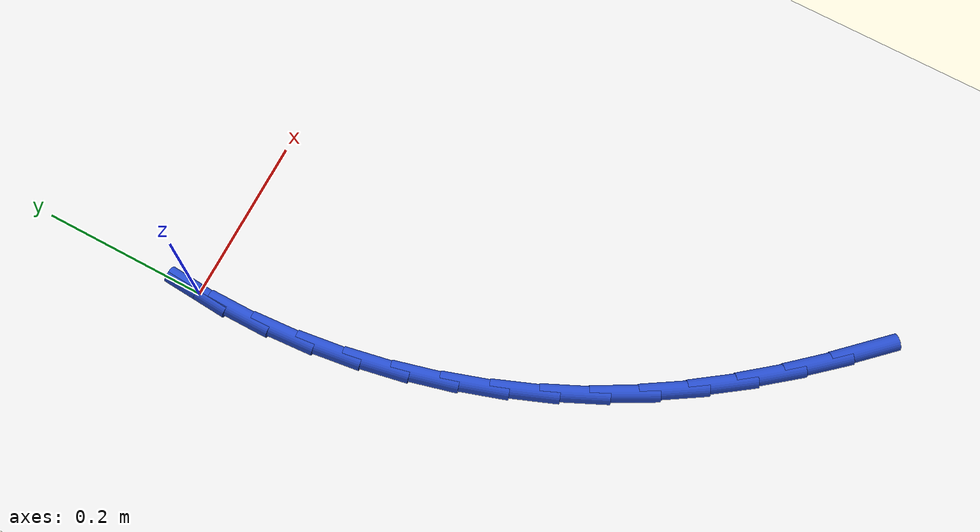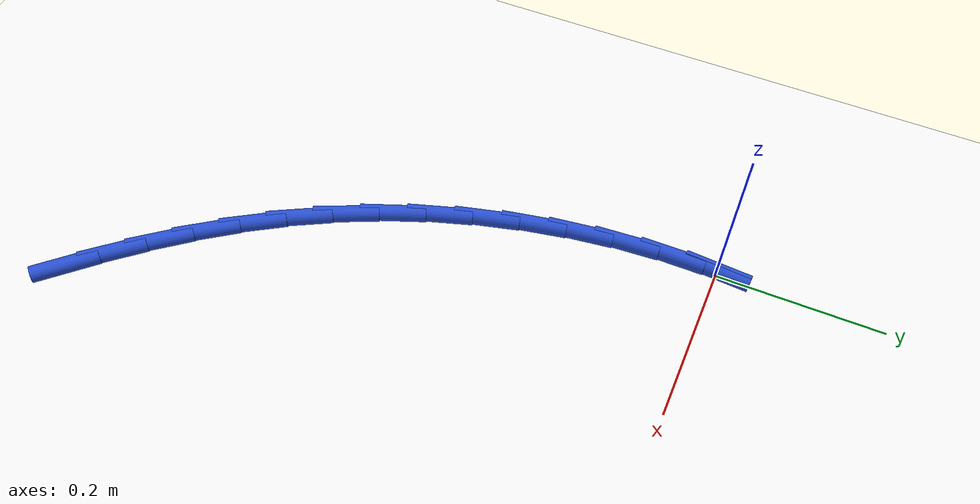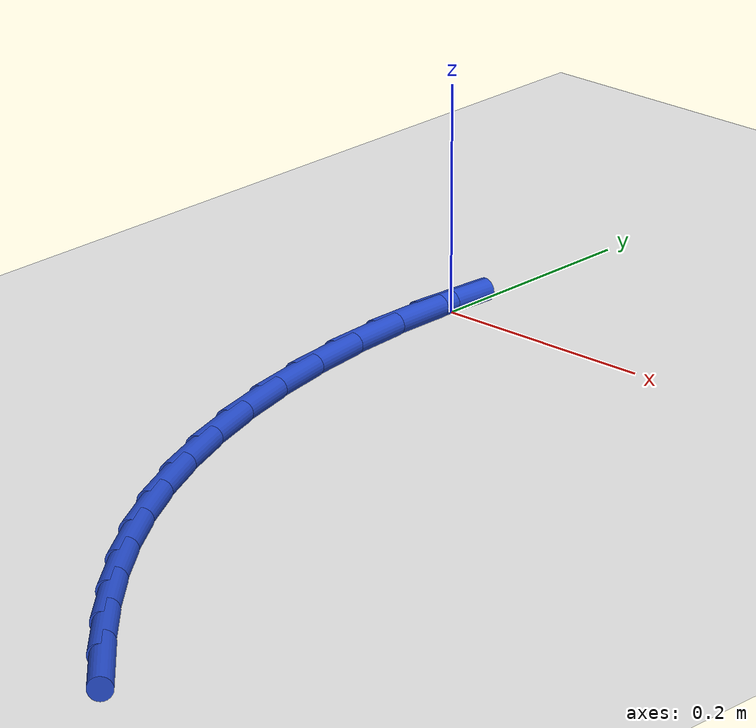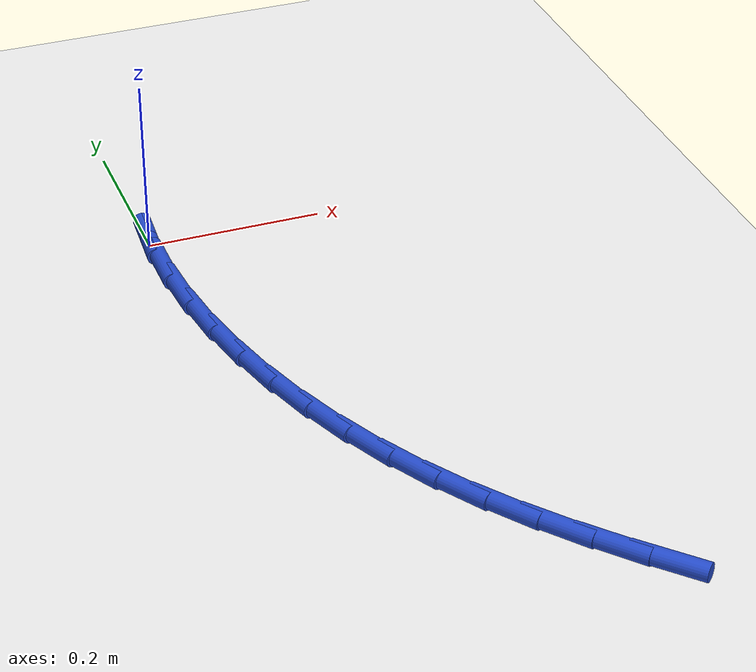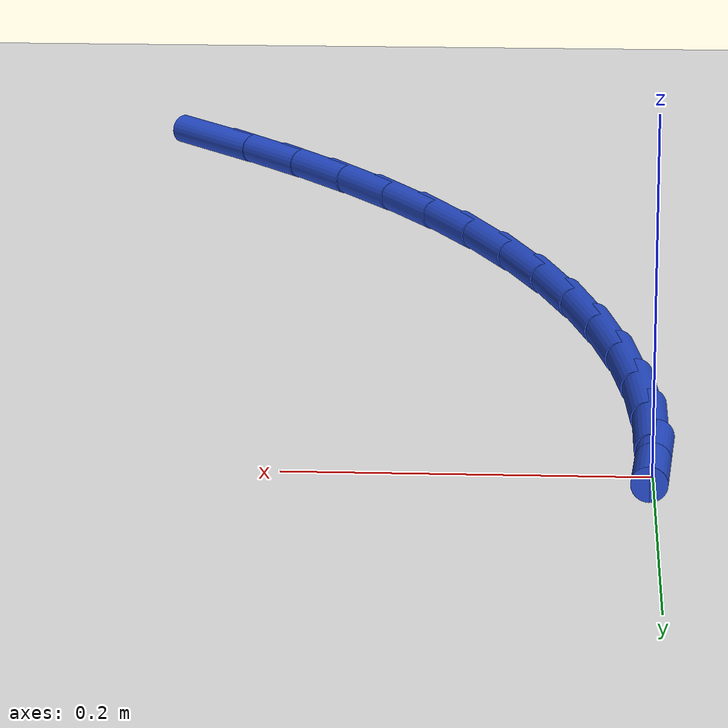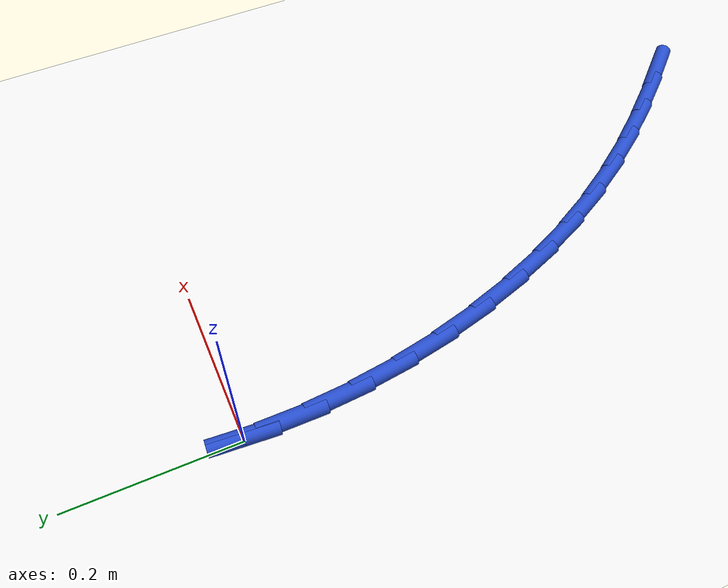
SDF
<sdf version="1.6">
 <world name="default">
  <model name="ground_plane">
   <static>1</static>
   <link name="link">
    <collision name="collision">
     <geometry><plane><normal>0 0 1</normal><size>100 100</size></plane></geometry>
     <surface><friction><ode><mu>100</mu><mu2>50</mu2></ode></friction></surface>
    </collision>
    <visual name="visual">
     <cast_shadows>0</cast_shadows>
     <geometry><plane><normal>0 0 1</normal><size>100 100</size></plane></geometry>
     <material>
      <script><uri>file://media/materials/scripts/gazebo.material</uri><name>Gazebo/WhiteGlow</name></script>
     </material>
    </visual>
   </link>
  </model>
  <model name="line">
   <link name="link_0">
    <pose>-6.938893903907228e-17 6.938893903907228e-17 0.01 0 1.57 1.5018297165987593</pose>
    <collision name="collision">
     <geometry><cylinder><radius>0.01</radius><length>0.08</length></cylinder></geometry>
    </collision>
    <visual name="visual">
     <material>
      <script><name>Gazebo/Blue</name><uri>file://media/materials/scripts/gazebo.material</uri></script>
     </material>
     <geometry><cylinder><radius>0.01</radius><length>0.08</length></cylinder></geometry>
    </visual>
   </link>
   <link name="link_116">
    <pose>0.2978904582629054 -0.7003818409103721 0.01 0 1.57 -0.804767572919298</pose>
    <collision name="collision">
     <geometry><cylinder><radius>0.01</radius><length>0.08</length></cylinder></geometry>
    </collision>
    <visual name="visual">
     <material>
      <script><name>Gazebo/Blue</name><uri>file://media/materials/scripts/gazebo.material</uri></script>
     </material>
     <geometry><cylinder><radius>0.01</radius><length>0.08</length></cylinder></geometry>
    </visual>
   </link>
   <link name="link_117">
    <pose>0.2592275522506686 -0.660191401115927 0.01 0 1.57 -0.8456819976106417</pose>
    <collision name="collision">
     <geometry><cylinder><radius>0.01</radius><length>0.08</length></cylinder></geometry>
    </collision>
    <visual name="visual">
     <material>
      <script><name>Gazebo/Blue</name><uri>file://media/materials/scripts/gazebo.material</uri></script>
     </material>
     <geometry><cylinder><radius>0.01</radius><length>0.08</length></cylinder></geometry>
    </visual>
   </link>
   <link name="link_118">
    <pose>0.22235094642159942 -0.6185773364656042 0.01 0 1.57 -0.8928276456268046</pose>
    <collision name="collision">
     <geometry><cylinder><radius>0.01</radius><length>0.08</length></cylinder></geometry>
    </collision>
    <visual name="visual">
     <material>
      <script><name>Gazebo/Blue</name><uri>file://media/materials/scripts/gazebo.material</uri></script>
     </material>
     <geometry><cylinder><radius>0.01</radius><length>0.08</length></cylinder></geometry>
    </visual>
   </link>
   <link name="link_119">
    <pose>0.18753707469067815 -0.5753467890394134 0.01 0 1.57 -0.9461012022395117</pose>
    <collision name="collision">
     <geometry><cylinder><radius>0.01</radius><length>0.08</length></cylinder></geometry>
    </collision>
    <visual name="visual">
     <material>
      <script><name>Gazebo/Blue</name><uri>file://media/materials/scripts/gazebo.material</uri></script>
     </material>
     <geometry><cylinder><radius>0.01</radius><length>0.08</length></cylinder></geometry>
    </visual>
   </link>
   <link name="link_120">
    <pose>0.15506237097288306 -0.5303069009173617 0.01 0 1.57 -1.0052295514214722</pose>
    <collision name="collision">
     <geometry><cylinder><radius>0.01</radius><length>0.08</length></cylinder></geometry>
    </collision>
    <visual name="visual">
     <material>
      <script><name>Gazebo/Blue</name><uri>file://media/materials/scripts/gazebo.material</uri></script>
     </material>
     <geometry><cylinder><radius>0.01</radius><length>0.08</length></cylinder></geometry>
    </visual>
   </link>
   <link name="link_121">
    <pose>0.12520326918319322 -0.48326481417945816 0.01 0 1.57 -1.06941275107051</pose>
    <collision name="collision">
     <geometry><cylinder><radius>0.01</radius><length>0.08</length></cylinder></geometry>
    </collision>
    <visual name="visual">
     <material>
      <script><name>Gazebo/Blue</name><uri>file://media/materials/scripts/gazebo.material</uri></script>
     </material>
     <geometry><cylinder><radius>0.01</radius><length>0.08</length></cylinder></geometry>
    </visual>
   </link>
   <link name="link_122">
    <pose>0.09822890904358264 -0.4340505412879327 0.01 0 1.57 -1.1339860611031782</pose>
    <collision name="collision">
     <geometry><cylinder><radius>0.01</radius><length>0.08</length></cylinder></geometry>
    </collision>
    <visual name="visual">
     <material>
      <script><name>Gazebo/Blue</name><uri>file://media/materials/scripts/gazebo.material</uri></script>
     </material>
     <geometry><cylinder><radius>0.01</radius><length>0.08</length></cylinder></geometry>
    </visual>
   </link>
   <link name="link_123">
    <pose>0.07430668353510661 -0.38281311380048655 0.01 0 1.57 -1.1963943296403172</pose>
    <collision name="collision">
     <geometry><cylinder><radius>0.01</radius><length>0.08</length></cylinder></geometry>
    </collision>
    <visual name="visual">
     <material>
      <script><name>Gazebo/Blue</name><uri>file://media/materials/scripts/gazebo.material</uri></script>
     </material>
     <geometry><cylinder><radius>0.01</radius><length>0.08</length></cylinder></geometry>
    </visual>
   </link>
   <link name="link_124">
    <pose>0.053529279097839236 -0.32993579989915944 0.01 0 1.57 -1.2574026510803076</pose>
    <collision name="collision">
     <geometry><cylinder><radius>0.01</radius><length>0.08</length></cylinder></geometry>
    </collision>
    <visual name="visual">
     <material>
      <script><name>Gazebo/Blue</name><uri>file://media/materials/scripts/gazebo.material</uri></script>
     </material>
     <geometry><cylinder><radius>0.01</radius><length>0.08</length></cylinder></geometry>
    </visual>
   </link>
   <link name="link_125">
    <pose>0.03598765832160857 -0.2758072727660992 0.01 0 1.57 -1.3178391936511522</pose>
    <collision name="collision">
     <geometry><cylinder><radius>0.01</radius><length>0.08</length></cylinder></geometry>
    </collision>
    <visual name="visual">
     <material>
      <script><name>Gazebo/Blue</name><uri>file://media/materials/scripts/gazebo.material</uri></script>
     </material>
     <geometry><cylinder><radius>0.01</radius><length>0.08</length></cylinder></geometry>
    </visual>
   </link>
   <link name="link_126">
    <pose>0.021772783796242843 -0.22081620558345358 0.01 0 1.57 -1.378534333544338</pose>
    <collision name="collision">
     <geometry><cylinder><radius>0.01</radius><length>0.08</length></cylinder></geometry>
    </collision>
    <visual name="visual">
     <material>
      <script><name>Gazebo/Blue</name><uri>file://media/materials/scripts/gazebo.material</uri></script>
     </material>
     <geometry><cylinder><radius>0.01</radius><length>0.08</length></cylinder></geometry>
    </visual>
   </link>
   <link name="link_127">
    <pose>0.01097561811157085 -0.16535127153337273 0.01 0 1.57 -1.4403358285088848</pose>
    <collision name="collision">
     <geometry><cylinder><radius>0.01</radius><length>0.08</length></cylinder></geometry>
    </collision>
    <visual name="visual">
     <material>
      <script><name>Gazebo/Blue</name><uri>file://media/materials/scripts/gazebo.material</uri></script>
     </material>
     <geometry><cylinder><radius>0.01</radius><length>0.08</length></cylinder></geometry>
    </visual>
   </link>
   <link name="link_128">
    <pose>0.0036871238574207633 -0.10980114379800447 0.01 0 1.57 -1.5041245392190132</pose>
    <collision name="collision">
     <geometry><cylinder><radius>0.01</radius><length>0.08</length></cylinder></geometry>
    </collision>
    <visual name="visual">
     <material>
      <script><name>Gazebo/Blue</name><uri>file://media/materials/scripts/gazebo.material</uri></script>
     </material>
     <geometry><cylinder><radius>0.01</radius><length>0.08</length></cylinder></geometry>
    </visual>
   </link>
   <link name="link_129">
    <pose>-1.7363763790117365e-06 -0.054554495559497415 0.01 0 1.57 1.5707644985035607</pose>
    <collision name="collision">
     <geometry><cylinder><radius>0.01</radius><length>0.08</length></cylinder></geometry>
    </collision>
    <visual name="visual">
     <material>
      <script><name>Gazebo/Blue</name><uri>file://media/materials/scripts/gazebo.material</uri></script>
     </material>
     <geometry><cylinder><radius>0.01</radius><length>0.08</length></cylinder></geometry>
    </visual>
   </link>
   <link name="link_130">
    <pose>-7.632783294297951e-17 -8.326672684688674e-17 0.01 0 1.57 1.5001633990319183</pose>
    <collision name="collision">
     <geometry><cylinder><radius>0.01</radius><length>0.08</length></cylinder></geometry>
    </collision>
    <visual name="visual">
     <material>
      <script><name>Gazebo/Blue</name><uri>file://media/materials/scripts/gazebo.material</uri></script>
     </material>
     <geometry><cylinder><radius>0.01</radius><length>0.08</length></cylinder></geometry>
    </visual>
   </link>
  </model>
 </world>
</sdf>
